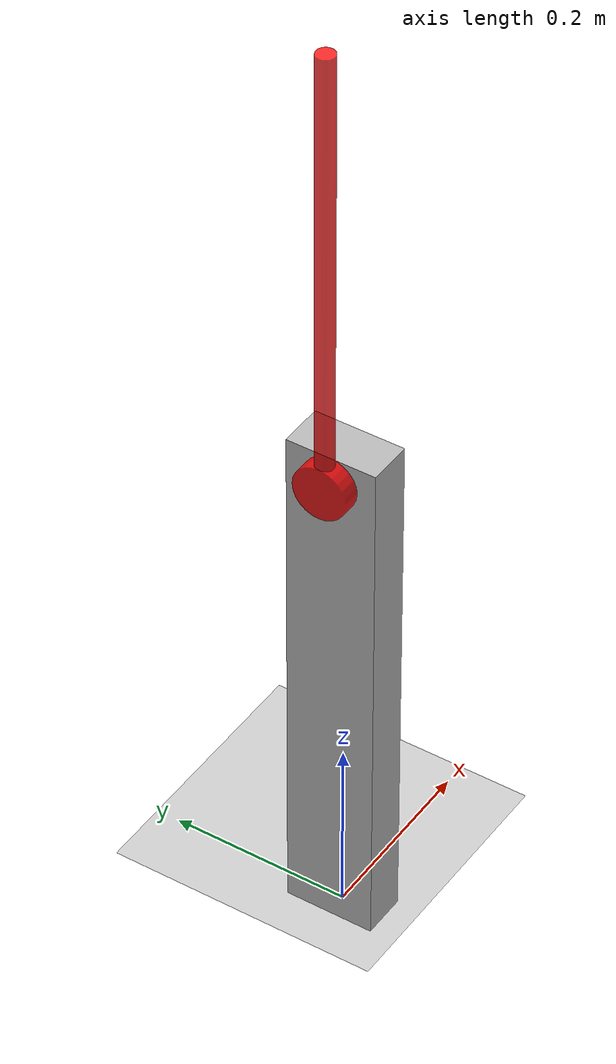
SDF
<?xml version="1.0" ?>
<sdf version="1.6">
    <world name="default">
        <physics default="true" type="dart">
            <!-- Run the simulation at real-time -->
            <real_time_factor>1</real_time_factor>
            <max_step_size>0.001</max_step_size>
        </physics>
        <plugin
                filename="libPhysicsSystem.so"
                name="scenario::plugins::gazebo::Physics">
        </plugin>
        <plugin
                filename="libignition-gazebo-user-commands-system.so"
                name="ignition::gazebo::systems::UserCommands">
        </plugin>
        <plugin
                filename="libignition-gazebo-scene-broadcaster-system.so"
                name="ignition::gazebo::systems::SceneBroadcaster">
        </plugin>
        <plugin
                filename="libignition-gazebo-contact-system.so"
                name="ignition::gazebo::systems::Contact">
        </plugin>

        <gui fullscreen="0">
            <!-- 3D scene -->
            <plugin filename="GzScene3D" name="3D View">
                <ignition-gui>
                    <title>3D View</title>
                    <property type="bool" key="showTitleBar">false</property>
                    <property type="string" key="state">docked</property>
                </ignition-gui>
                <engine>ogre</engine>
                <scene>scene</scene>
                <ambient_light>0.4 0.4 0.4</ambient_light>
                <background_color>0.8 0.8 0.8</background_color>
                <camera_pose>-6 0 6 0 0.5 0</camera_pose>
                <service>/world/default/scene/info</service>
                <pose_topic>/world/default/pose/info</pose_topic>
            </plugin>

            <!-- World control -->
            <plugin filename="WorldControl" name="World control">
                <ignition-gui>
                    <title>World control</title>
                    <property type="bool" key="showTitleBar">false</property>
                    <property type="bool" key="resizable">false</property>
                    <property type="double" key="height">72</property>
                    <property type="double" key="width">121</property>
                    <property type="double" key="z">1</property>
                    <property type="string" key="state">floating</property>
                    <anchors target="3D View">
                        <line own="left" target="left"/>
                        <line own="bottom" target="bottom"/>
                    </anchors>
                </ignition-gui>
                <play_pause>true</play_pause>
                <step>true</step>
                <start_paused>true</start_paused>
                <service>/world/default/control</service>
                <stats_topic>/world/default/stats</stats_topic>
            </plugin>

            <!-- World statistics -->
            <plugin filename="WorldStats" name="World stats">
                <ignition-gui>
                    <title>World stats</title>
                    <property type="bool" key="showTitleBar">false</property>
                    <property type="bool" key="resizable">false</property>
                    <property type="double" key="height">110</property>
                    <property type="double" key="width">290</property>
                    <property type="double" key="z">1</property>
                    <property type="string" key="state">floating</property>
                    <anchors target="3D View">
                        <line own="right" target="right"/>
                        <line own="bottom" target="bottom"/>
                    </anchors>
                </ignition-gui>
                <sim_time>true</sim_time>
                <real_time>true</real_time>
                <real_time_factor>true</real_time_factor>
                <iterations>true</iterations>
                <topic>/world/default/stats</topic>
            </plugin>
        </gui>

        <light type="directional" name="sun">
            <cast_shadows>true</cast_shadows>
            <pose>10 0 3 0 0 0</pose>
            <diffuse>0.8 0.8 0.8 1</diffuse>
            <specular>0.2 0.2 0.2 1</specular>
            <attenuation>
                <range>1000</range>
                <constant>0.9</constant>
                <linear>0.01</linear>
                <quadratic>0.001</quadratic>
            </attenuation>
            <direction>0.75 0.075 -0.667</direction>
        </light>

        <model name="ground_plane">
            <static>true</static>
            <link name="link">
                <collision name="collision">
                    <geometry>
                        <plane>
                            <normal>0 0 1</normal>
                        </plane>
                    </geometry>
                    <surface>
                        <friction>
                            <ode>
                                <mu>100</mu>
                                <mu2>50</mu2>
                            </ode>
                        </friction>
                    </surface>
                </collision>
                <visual name="visual">
                    <geometry>
                        <plane>
                            <normal>0 0 1</normal>
                            <size>100 100</size>
                        </plane>
                    </geometry>
                    <material>
                        <ambient>0.8 0.8 0.8 1</ambient>
                        <diffuse>0.8 0.8 0.8 1</diffuse>
                        <specular>0.8 0.8 0.8 1</specular>
                    </material>
                </visual>
            </link>
        </model>

        <include>
            <pose>0 0 0 0 0 3.14</pose>
            <uri>Pendulum</uri>
        </include>

    </world>
</sdf>

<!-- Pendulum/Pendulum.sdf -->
<sdf version='1.6'>
  <model name='pendulum_xacro'>
    <link name='support'>
      <pose>0 0 0 0 -0 0</pose>
      <inertial>
        <pose>0 0 0.3 0 -0 0</pose>
        <mass>1000</mass>
        <inertia>
          <ixx>30.8333</ixx>
          <ixy>0</ixy>
          <ixz>0</ixz>
          <iyy>30.2083</iyy>
          <iyz>0</iyz>
          <izz>1.04167</izz>
        </inertia>
      </inertial>
      <collision name='support_collision'>
        <pose>0 0 0.3 0 -0 0</pose>
        <geometry>
          <box>
            <size>0.05 0.1 0.6</size>
          </box>
        </geometry>
      </collision>
      <visual name='support_visual'>
        <pose>0 0 0.3 0 -0 0</pose>
        <geometry>
          <box>
            <size>0.05 0.1 0.6</size>
          </box>
        </geometry>
      </visual>
    </link>
    <link name='pendulum'>
      <pose>0.035 0 0.57 0 -0 0</pose>
      <inertial>
        <pose>0 0 0.25 0 -0 0</pose>
        <mass>1</mass>
        <inertia>
          <ixx>0.0208583</ixx>
          <ixy>0</ixy>
          <ixz>0</ixz>
          <iyy>0.0208583</iyy>
          <iyz>0</iyz>
          <izz>5e-05</izz>
        </inertia>
      </inertial>
      <collision name='pendulum_collision'>
        <pose>0 0 0.25 0 -0 0</pose>
        <geometry>
          <cylinder>
            <length>0.5</length>
            <radius>0.01</radius>
          </cylinder>
        </geometry>
        <surface>
          <contact>
            <ode/>
          </contact>
          <friction>
            <ode/>
          </friction>
        </surface>
      </collision>
      <visual name='pendulum_visual'>
        <pose>0 0 0.25 0 -0 0</pose>
        <geometry>
          <cylinder>
            <length>0.5</length>
            <radius>0.01</radius>
          </cylinder>
        </geometry>
        <material>
          <ambient>1 0 0 0.8</ambient>
          <diffuse>1 0 0 0.8</diffuse>
          <specular>1 0 0 0.8</specular>
          <emissive>1 0 0 0.8</emissive>
        </material>
      </visual>
      <visual name='pendulum_visual_1'>
        <pose>0 0 0 3.14159 1.57079 3.14159</pose>
        <geometry>
          <cylinder>
            <length>0.02</length>
            <radius>0.03</radius>
          </cylinder>
        </geometry>
        <material>
          <ambient>1 0 0 0.8</ambient>
          <diffuse>1 0 0 0.8</diffuse>
          <specular>1 0 0 0.8</specular>
          <emissive>1 0 0 0.8</emissive>
        </material>
      </visual>
      <gravity>1</gravity>
      <velocity_decay/>
    </link>
    <joint name='pivot' type='revolute'>
      <child>pendulum</child>
      <parent>support</parent>
      <axis>
        <xyz>1 0 0</xyz>
        <limit>
          <lower>-1e+16</lower>
          <upper>1e+16</upper>
        </limit>
        <dynamics>
          <damping>0</damping>
          <friction>0</friction>
          <spring_reference>0</spring_reference>
          <spring_stiffness>0</spring_stiffness>
        </dynamics>
        <use_parent_model_frame>0</use_parent_model_frame>
      </axis>
    </joint>
  </model>
</sdf>
